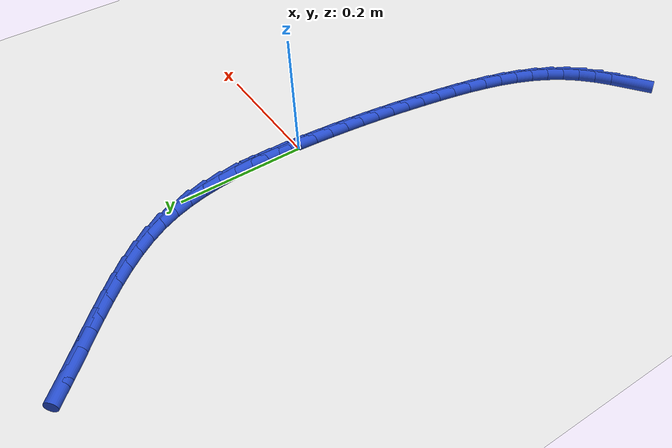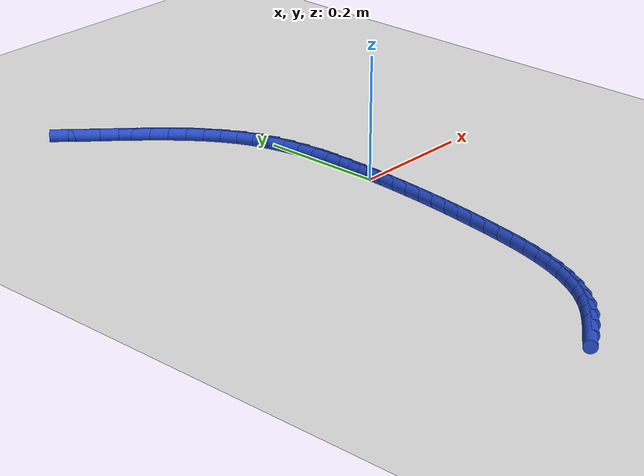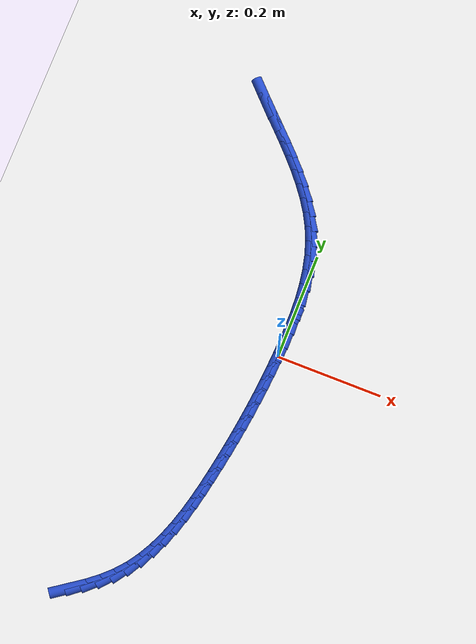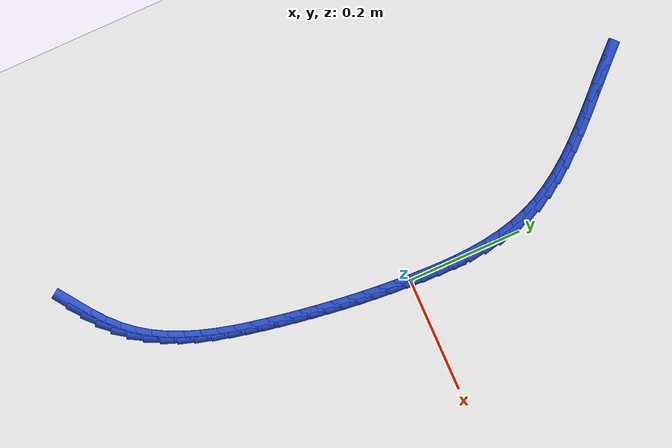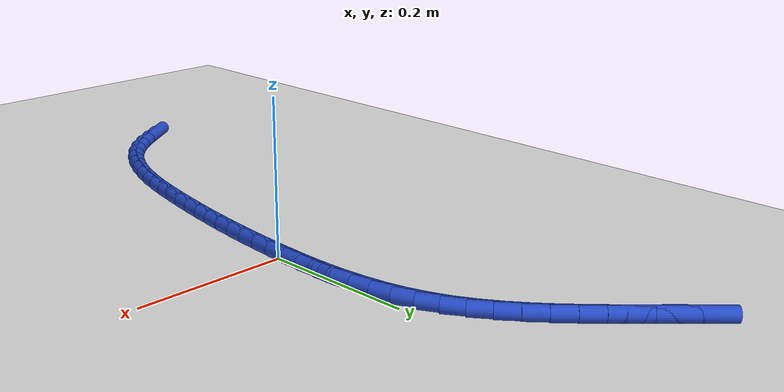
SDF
<sdf version="1.6">
 <world name="default">
  <model name="ground_plane">
   <static>1</static>
   <link name="link">
    <collision name="collision">
     <geometry><plane><normal>0 0 1</normal><size>100 100</size></plane></geometry>
     <surface><friction><ode><mu>100</mu><mu2>50</mu2></ode></friction></surface>
    </collision>
    <visual name="visual">
     <cast_shadows>0</cast_shadows>
     <geometry><plane><normal>0 0 1</normal><size>100 100</size></plane></geometry>
     <material>
      <script><uri>file://media/materials/scripts/gazebo.material</uri><name>Gazebo/WhiteGlow</name></script>
     </material>
    </visual>
   </link>
  </model>
  <model name="line">
   <link name="link_0">
    <pose>1.0299920638612292e-18 1.3877787807814457e-17 0.01 0 1.57 1.524596654501401</pose>
    <collision name="collision">
     <geometry><cylinder><radius>0.01</radius><length>0.08</length></cylinder></geometry>
    </collision>
    <visual name="visual">
     <material>
      <script><name>Gazebo/Blue</name><uri>file://media/materials/scripts/gazebo.material</uri></script>
     </material>
     <geometry><cylinder><radius>0.01</radius><length>0.08</length></cylinder></geometry>
    </visual>
   </link>
   <link name="link_1">
    <pose>0.0012995794318501834 0.02810960823162582 0.01 0 1.57 1.5480155194514944</pose>
    <collision name="collision">
     <geometry><cylinder><radius>0.01</radius><length>0.08</length></cylinder></geometry>
    </collision>
    <visual name="visual">
     <material>
      <script><name>Gazebo/Blue</name><uri>file://media/materials/scripts/gazebo.material</uri></script>
     </material>
     <geometry><cylinder><radius>0.01</radius><length>0.08</length></cylinder></geometry>
    </visual>
   </link>
   <link name="link_2">
    <pose>0.0019438009977629273 0.056383852839954396 0.01 0 1.57 -1.5617484835890312</pose>
    <collision name="collision">
     <geometry><cylinder><radius>0.01</radius><length>0.08</length></cylinder></geometry>
    </collision>
    <visual name="visual">
     <material>
      <script><name>Gazebo/Blue</name><uri>file://media/materials/scripts/gazebo.material</uri></script>
     </material>
     <geometry><cylinder><radius>0.01</radius><length>0.08</length></cylinder></geometry>
    </visual>
   </link>
   <link name="link_3">
    <pose>0.0016878100425737725 0.08467611696201711 0.01 0 1.57 -1.5210902962276536</pose>
    <collision name="collision">
     <geometry><cylinder><radius>0.01</radius><length>0.08</length></cylinder></geometry>
    </collision>
    <visual name="visual">
     <material>
      <script><name>Gazebo/Blue</name><uri>file://media/materials/scripts/gazebo.material</uri></script>
     </material>
     <geometry><cylinder><radius>0.01</radius><length>0.08</length></cylinder></geometry>
    </visual>
   </link>
   <link name="link_4">
    <pose>0.000286751911118262 0.11283978373484543 0.01 0 1.57 -1.4710518882741541</pose>
    <collision name="collision">
     <geometry><cylinder><radius>0.01</radius><length>0.08</length></cylinder></geometry>
    </collision>
    <visual name="visual">
     <material>
      <script><name>Gazebo/Blue</name><uri>file://media/materials/scripts/gazebo.material</uri></script>
     </material>
     <geometry><cylinder><radius>0.01</radius><length>0.08</length></cylinder></geometry>
    </visual>
   </link>
   <link name="link_5">
    <pose>-0.0025042280517680662 0.14072823629547068 0.01 0 1.57 -1.411037345589149</pose>
    <collision name="collision">
     <geometry><cylinder><radius>0.01</radius><length>0.08</length></cylinder></geometry>
    </collision>
    <visual name="visual">
     <material>
      <script><name>Gazebo/Blue</name><uri>file://media/materials/scripts/gazebo.material</uri></script>
     </material>
     <geometry><cylinder><radius>0.01</radius><length>0.08</length></cylinder></geometry>
    </visual>
   </link>
   <link name="link_6">
    <pose>-0.006929984501249669 0.1681948577809243 0.01 0 1.57 -1.3405369817601482</pose>
    <collision name="collision">
     <geometry><cylinder><radius>0.01</radius><length>0.08</length></cylinder></geometry>
    </collision>
    <visual name="visual">
     <material>
      <script><name>Gazebo/Blue</name><uri>file://media/materials/scripts/gazebo.material</uri></script>
     </material>
     <geometry><cylinder><radius>0.01</radius><length>0.08</length></cylinder></geometry>
    </visual>
   </link>
   <link name="link_7">
    <pose>-0.013235372092491 0.1950930313282377 0.01 0 1.57 -1.259317850776316</pose>
    <collision name="collision">
     <geometry><cylinder><radius>0.01</radius><length>0.08</length></cylinder></geometry>
    </collision>
    <visual name="visual">
     <material>
      <script><name>Gazebo/Blue</name><uri>file://media/materials/scripts/gazebo.material</uri></script>
     </material>
     <geometry><cylinder><radius>0.01</radius><length>0.08</length></cylinder></geometry>
    </visual>
   </link>
   <link name="link_8">
    <pose>-0.021665245480656528 0.2212761400744422 0.01 0 1.57 -1.1677625449954943</pose>
    <collision name="collision">
     <geometry><cylinder><radius>0.01</radius><length>0.08</length></cylinder></geometry>
    </collision>
    <visual name="visual">
     <material>
      <script><name>Gazebo/Blue</name><uri>file://media/materials/scripts/gazebo.material</uri></script>
     </material>
     <geometry><cylinder><radius>0.01</radius><length>0.08</length></cylinder></geometry>
    </visual>
   </link>
   <link name="link_9">
    <pose>-0.032462093332376284 0.24659862749176453 0.01 0 1.57 -1.0746625207536677</pose>
    <collision name="collision">
     <geometry><cylinder><radius>0.01</radius><length>0.08</length></cylinder></geometry>
    </collision>
    <visual name="visual">
     <material>
      <script><name>Gazebo/Blue</name><uri>file://media/materials/scripts/gazebo.material</uri></script>
     </material>
     <geometry><cylinder><radius>0.01</radius><length>0.08</length></cylinder></geometry>
    </visual>
   </link>
   <link name="link_10">
    <pose>-0.04567198882232284 0.27100296210242103 0.01 0 1.57 -0.994409094864326</pose>
    <collision name="collision">
     <geometry><cylinder><radius>0.01</radius><length>0.08</length></cylinder></geometry>
    </collision>
    <visual name="visual">
     <material>
      <script><name>Gazebo/Blue</name><uri>file://media/materials/scripts/gazebo.material</uri></script>
     </material>
     <geometry><cylinder><radius>0.01</radius><length>0.08</length></cylinder></geometry>
    </visual>
   </link>
   <link name="link_11">
    <pose>-0.06100027106375672 0.29458431490891634 0.01 0 1.57 -0.9282357230222996</pose>
    <collision name="collision">
     <geometry><cylinder><radius>0.01</radius><length>0.08</length></cylinder></geometry>
    </collision>
    <visual name="visual">
     <material>
      <script><name>Gazebo/Blue</name><uri>file://media/materials/scripts/gazebo.material</uri></script>
     </material>
     <geometry><cylinder><radius>0.01</radius><length>0.08</length></cylinder></geometry>
    </visual>
   </link>
   <link name="link_12">
    <pose>-0.07811827432050887 0.3174530964375885 0.01 0 1.57 -0.8754344284416488</pose>
    <collision name="collision">
     <geometry><cylinder><radius>0.01</radius><length>0.08</length></cylinder></geometry>
    </collision>
    <visual name="visual">
     <material>
      <script><name>Gazebo/Blue</name><uri>file://media/materials/scripts/gazebo.material</uri></script>
     </material>
     <geometry><cylinder><radius>0.01</radius><length>0.08</length></cylinder></geometry>
    </visual>
   </link>
   <link name="link_13">
    <pose>-0.09669733285641029 0.33971971721477573 0.01 0 1.57 -0.8350946309687263</pose>
    <collision name="collision">
     <geometry><cylinder><radius>0.01</radius><length>0.08</length></cylinder></geometry>
    </collision>
    <visual name="visual">
     <material>
      <script><name>Gazebo/Blue</name><uri>file://media/materials/scripts/gazebo.material</uri></script>
     </material>
     <geometry><cylinder><radius>0.01</radius><length>0.08</length></cylinder></geometry>
    </visual>
   </link>
   <link name="link_14">
    <pose>-0.11640878093529186 0.36149458776681576 0.01 0 1.57 -0.8063539632807074</pose>
    <collision name="collision">
     <geometry><cylinder><radius>0.01</radius><length>0.08</length></cylinder></geometry>
    </collision>
    <visual name="visual">
     <material>
      <script><name>Gazebo/Blue</name><uri>file://media/materials/scripts/gazebo.material</uri></script>
     </material>
     <geometry><cylinder><radius>0.01</radius><length>0.08</length></cylinder></geometry>
    </visual>
   </link>
   <link name="link_15">
    <pose>-0.13692395282098463 0.38288811862004707 0.01 0 1.57 -0.7885414164947433</pose>
    <collision name="collision">
     <geometry><cylinder><radius>0.01</radius><length>0.08</length></cylinder></geometry>
    </collision>
    <visual name="visual">
     <material>
      <script><name>Gazebo/Blue</name><uri>file://media/materials/scripts/gazebo.material</uri></script>
     </material>
     <geometry><cylinder><radius>0.01</radius><length>0.08</length></cylinder></geometry>
    </visual>
   </link>
   <link name="link_16">
    <pose>-0.15791418277731945 0.4040107203008073 0.01 0 1.57 -0.7812522340916915</pose>
    <collision name="collision">
     <geometry><cylinder><radius>0.01</radius><length>0.08</length></cylinder></geometry>
    </collision>
    <visual name="visual">
     <material>
      <script><name>Gazebo/Blue</name><uri>file://media/materials/scripts/gazebo.material</uri></script>
     </material>
     <geometry><cylinder><radius>0.01</radius><length>0.08</length></cylinder></geometry>
    </visual>
   </link>
   <link name="link_17">
    <pose>-0.17905080506812737 0.4249728033354349 0.01 0 1.57 -0.7843860382343165</pose>
    <collision name="collision">
     <geometry><cylinder><radius>0.01</radius><length>0.08</length></cylinder></geometry>
    </collision>
    <visual name="visual">
     <material>
      <script><name>Gazebo/Blue</name><uri>file://media/materials/scripts/gazebo.material</uri></script>
     </material>
     <geometry><cylinder><radius>0.01</radius><length>0.08</length></cylinder></geometry>
    </visual>
   </link>
   <link name="link_18">
    <pose>-0.20000515395723936 0.44588477825026784 0.01 0 1.57 -0.7981672097057642</pose>
    <collision name="collision">
     <geometry><cylinder><radius>0.01</radius><length>0.08</length></cylinder></geometry>
    </collision>
    <visual name="visual">
     <material>
      <script><name>Gazebo/Blue</name><uri>file://media/materials/scripts/gazebo.material</uri></script>
     </material>
     <geometry><cylinder><radius>0.01</radius><length>0.08</length></cylinder></geometry>
    </visual>
   </link>
   <link name="link_239">
    <pose>-0.18935843358665794 -0.5290403167448178 0.01 0 1.57 0.6155123413137054</pose>
    <collision name="collision">
     <geometry><cylinder><radius>0.01</radius><length>0.08</length></cylinder></geometry>
    </collision>
    <visual name="visual">
     <material>
      <script><name>Gazebo/Blue</name><uri>file://media/materials/scripts/gazebo.material</uri></script>
     </material>
     <geometry><cylinder><radius>0.01</radius><length>0.08</length></cylinder></geometry>
    </visual>
   </link>
   <link name="link_240">
    <pose>-0.166379016194091 -0.5127902900341645 0.01 0 1.57 0.6796086793850051</pose>
    <collision name="collision">
     <geometry><cylinder><radius>0.01</radius><length>0.08</length></cylinder></geometry>
    </collision>
    <visual name="visual">
     <material>
      <script><name>Gazebo/Blue</name><uri>file://media/materials/scripts/gazebo.material</uri></script>
     </material>
     <geometry><cylinder><radius>0.01</radius><length>0.08</length></cylinder></geometry>
    </visual>
   </link>
   <link name="link_241">
    <pose>-0.14482487498152705 -0.4953742343805272 0.01 0 1.57 0.7625661701061404</pose>
    <collision name="collision">
     <geometry><cylinder><radius>0.01</radius><length>0.08</length></cylinder></geometry>
    </collision>
    <visual name="visual">
     <material>
      <script><name>Gazebo/Blue</name><uri>file://media/materials/scripts/gazebo.material</uri></script>
     </material>
     <geometry><cylinder><radius>0.01</radius><length>0.08</length></cylinder></geometry>
    </visual>
   </link>
   <link name="link_242">
    <pose>-0.12507404562685995 -0.47650532391964906 0.01 0 1.57 0.8644721790427347</pose>
    <collision name="collision">
     <geometry><cylinder><radius>0.01</radius><length>0.08</length></cylinder></geometry>
    </collision>
    <visual name="visual">
     <material>
      <script><name>Gazebo/Blue</name><uri>file://media/materials/scripts/gazebo.material</uri></script>
     </material>
     <geometry><cylinder><radius>0.01</radius><length>0.08</length></cylinder></geometry>
    </visual>
   </link>
   <link name="link_243">
    <pose>-0.10749722826704881 -0.45590323949006945 0.01 0 1.57 0.9715578676004064</pose>
    <collision name="collision">
     <geometry><cylinder><radius>0.01</radius><length>0.08</length></cylinder></geometry>
    </collision>
    <visual name="visual">
     <material>
      <script><name>Gazebo/Blue</name><uri>file://media/materials/scripts/gazebo.material</uri></script>
     </material>
     <geometry><cylinder><radius>0.01</radius><length>0.08</length></cylinder></geometry>
    </visual>
   </link>
   <link name="link_244">
    <pose>-0.09220683334519561 -0.4335167676347329 0.01 0 1.57 1.06645778488665</pose>
    <collision name="collision">
     <geometry><cylinder><radius>0.01</radius><length>0.08</length></cylinder></geometry>
    </collision>
    <visual name="visual">
     <material>
      <script><name>Gazebo/Blue</name><uri>file://media/materials/scripts/gazebo.material</uri></script>
     </material>
     <geometry><cylinder><radius>0.01</radius><length>0.08</length></cylinder></geometry>
    </visual>
   </link>
   <link name="link_245">
    <pose>-0.07899451522598698 -0.40957920894819067 0.01 0 1.57 1.147755163198141</pose>
    <collision name="collision">
     <geometry><cylinder><radius>0.01</radius><length>0.08</length></cylinder></geometry>
    </collision>
    <visual name="visual">
     <material>
      <script><name>Gazebo/Blue</name><uri>file://media/materials/scripts/gazebo.material</uri></script>
     </material>
     <geometry><cylinder><radius>0.01</radius><length>0.08</length></cylinder></geometry>
    </visual>
   </link>
   <link name="link_246">
    <pose>-0.06763191543215943 -0.3843416156285691 0.01 0 1.57 1.2159076592392841</pose>
    <collision name="collision">
     <geometry><cylinder><radius>0.01</radius><length>0.08</length></cylinder></geometry>
    </collision>
    <visual name="visual">
     <material>
      <script><name>Gazebo/Blue</name><uri>file://media/materials/scripts/gazebo.material</uri></script>
     </material>
     <geometry><cylinder><radius>0.01</radius><length>0.08</length></cylinder></geometry>
    </visual>
   </link>
   <link name="link_247">
    <pose>-0.05789067548644836 -0.3580550398739927 0.01 0 1.57 1.2718069110434664</pose>
    <collision name="collision">
     <geometry><cylinder><radius>0.01</radius><length>0.08</length></cylinder></geometry>
    </collision>
    <visual name="visual">
     <material>
      <script><name>Gazebo/Blue</name><uri>file://media/materials/scripts/gazebo.material</uri></script>
     </material>
     <geometry><cylinder><radius>0.01</radius><length>0.08</length></cylinder></geometry>
    </visual>
   </link>
   <link name="link_248">
    <pose>-0.049542436911589514 -0.3309705338825861 0.01 0 1.57 1.3164473931029474</pose>
    <collision name="collision">
     <geometry><cylinder><radius>0.01</radius><length>0.08</length></cylinder></geometry>
    </collision>
    <visual name="visual">
     <material>
      <script><name>Gazebo/Blue</name><uri>file://media/materials/scripts/gazebo.material</uri></script>
     </material>
     <geometry><cylinder><radius>0.01</radius><length>0.08</length></cylinder></geometry>
    </visual>
   </link>
   <link name="link_249">
    <pose>-0.042358841230318675 -0.3033391498524747 0.01 0 1.57 1.3507197775034863</pose>
    <collision name="collision">
     <geometry><cylinder><radius>0.01</radius><length>0.08</length></cylinder></geometry>
    </collision>
    <visual name="visual">
     <material>
      <script><name>Gazebo/Blue</name><uri>file://media/materials/scripts/gazebo.material</uri></script>
     </material>
     <geometry><cylinder><radius>0.01</radius><length>0.08</length></cylinder></geometry>
    </visual>
   </link>
   <link name="link_250">
    <pose>-0.0361115299653716 -0.27541193998178326 0.01 0 1.57 1.3752924992307123</pose>
    <collision name="collision">
     <geometry><cylinder><radius>0.01</radius><length>0.08</length></cylinder></geometry>
    </collision>
    <visual name="visual">
     <material>
      <script><name>Gazebo/Blue</name><uri>file://media/materials/scripts/gazebo.material</uri></script>
     </material>
     <geometry><cylinder><radius>0.01</radius><length>0.08</length></cylinder></geometry>
    </visual>
   </link>
   <link name="link_251">
    <pose>-0.030572144639484065 -0.2474399564686368 0.01 0 1.57 1.3911327902284687</pose>
    <collision name="collision">
     <geometry><cylinder><radius>0.01</radius><length>0.08</length></cylinder></geometry>
    </collision>
    <visual name="visual">
     <material>
      <script><name>Gazebo/Blue</name><uri>file://media/materials/scripts/gazebo.material</uri></script>
     </material>
     <geometry><cylinder><radius>0.01</radius><length>0.08</length></cylinder></geometry>
    </visual>
   </link>
   <link name="link_252">
    <pose>-0.025525849367874345 -0.21965534456407754 0.01 0 1.57 1.4042313767078585</pose>
    <collision name="collision">
     <geometry><cylinder><radius>0.01</radius><length>0.08</length></cylinder></geometry>
    </collision>
    <visual name="visual">
     <material>
      <script><name>Gazebo/Blue</name><uri>file://media/materials/scripts/gazebo.material</uri></script>
     </material>
     <geometry><cylinder><radius>0.01</radius><length>0.08</length></cylinder></geometry>
    </visual>
   </link>
   <link name="link_253">
    <pose>-0.02089330681772412 -0.19210079886795525 0.01 0 1.57 1.4179322959381395</pose>
    <collision name="collision">
     <geometry><cylinder><radius>0.01</radius><length>0.08</length></cylinder></geometry>
    </collision>
    <visual name="visual">
     <material>
      <script><name>Gazebo/Blue</name><uri>file://media/materials/scripts/gazebo.material</uri></script>
     </material>
     <geometry><cylinder><radius>0.01</radius><length>0.08</length></cylinder></geometry>
    </visual>
   </link>
   <link name="link_254">
    <pose>-0.01667328753493108 -0.16470980551794656 0.01 0 1.57 1.4321874156709218</pose>
    <collision name="collision">
     <geometry><cylinder><radius>0.01</radius><length>0.08</length></cylinder></geometry>
    </collision>
    <visual name="visual">
     <material>
      <script><name>Gazebo/Blue</name><uri>file://media/materials/scripts/gazebo.material</uri></script>
     </material>
     <geometry><cylinder><radius>0.01</radius><length>0.08</length></cylinder></geometry>
    </visual>
   </link>
   <link name="link_255">
    <pose>-0.012865502939983193 -0.1374145351446536 0.01 0 1.57 1.4468957477269628</pose>
    <collision name="collision">
     <geometry><cylinder><radius>0.01</radius><length>0.08</length></cylinder></geometry>
    </collision>
    <visual name="visual">
     <material>
      <script><name>Gazebo/Blue</name><uri>file://media/materials/scripts/gazebo.material</uri></script>
     </material>
     <geometry><cylinder><radius>0.01</radius><length>0.08</length></cylinder></geometry>
    </visual>
   </link>
   <link name="link_256">
    <pose>-0.009469664453368424 -0.11014715837867849 0.01 0 1.57 1.4619468782015852</pose>
    <collision name="collision">
     <geometry><cylinder><radius>0.01</radius><length>0.08</length></cylinder></geometry>
    </collision>
    <visual name="visual">
     <material>
      <script><name>Gazebo/Blue</name><uri>file://media/materials/scripts/gazebo.material</uri></script>
     </material>
     <geometry><cylinder><radius>0.01</radius><length>0.08</length></cylinder></geometry>
    </visual>
   </link>
   <link name="link_257">
    <pose>-0.006485483495574747 -0.08283984585062343 0.01 0 1.57 1.4772237815634952</pose>
    <collision name="collision">
     <geometry><cylinder><radius>0.01</radius><length>0.08</length></cylinder></geometry>
    </collision>
    <visual name="visual">
     <material>
      <script><name>Gazebo/Blue</name><uri>file://media/materials/scripts/gazebo.material</uri></script>
     </material>
     <geometry><cylinder><radius>0.01</radius><length>0.08</length></cylinder></geometry>
    </visual>
   </link>
   <link name="link_258">
    <pose>-0.003912671487090138 -0.05542476819109055 0.01 0 1.57 1.4926059726801897</pose>
    <collision name="collision">
     <geometry><cylinder><radius>0.01</radius><length>0.08</length></cylinder></geometry>
    </collision>
    <visual name="visual">
     <material>
      <script><name>Gazebo/Blue</name><uri>file://media/materials/scripts/gazebo.material</uri></script>
     </material>
     <geometry><cylinder><radius>0.01</radius><length>0.08</length></cylinder></geometry>
    </visual>
   </link>
   <link name="link_259">
    <pose>-0.0017509398484025613 -0.02783409603068201 0.01 0 1.57 1.50797281324287</pose>
    <collision name="collision">
     <geometry><cylinder><radius>0.01</radius><length>0.08</length></cylinder></geometry>
    </collision>
    <visual name="visual">
     <material>
      <script><name>Gazebo/Blue</name><uri>file://media/materials/scripts/gazebo.material</uri></script>
     </material>
     <geometry><cylinder><radius>0.01</radius><length>0.08</length></cylinder></geometry>
    </visual>
   </link>
   <link name="link_260">
    <pose>6.938893903907228e-18 4.85722573273506e-17 0.01 0 1.57 1.5232067748911693</pose>
    <collision name="collision">
     <geometry><cylinder><radius>0.01</radius><length>0.08</length></cylinder></geometry>
    </collision>
    <visual name="visual">
     <material>
      <script><name>Gazebo/Blue</name><uri>file://media/materials/scripts/gazebo.material</uri></script>
     </material>
     <geometry><cylinder><radius>0.01</radius><length>0.08</length></cylinder></geometry>
    </visual>
   </link>
   <link name="link_261">
    <pose>0.0013404366376295997 0.02814534927035349 0.01 0 1.57 1.5381964679946276</pose>
    <collision name="collision">
     <geometry><cylinder><radius>0.01</radius><length>0.08</length></cylinder></geometry>
    </collision>
    <visual name="visual">
     <material>
      <script><name>Gazebo/Blue</name><uri>file://media/materials/scripts/gazebo.material</uri></script>
     </material>
     <geometry><cylinder><radius>0.01</radius><length>0.08</length></cylinder></geometry>
    </visual>
   </link>
   <link name="link_262">
    <pose>0.0022706586439982437 0.056669781149776124 0.01 0 1.57 1.5307495044247892</pose>
    <collision name="collision">
     <geometry><cylinder><radius>0.01</radius><length>0.08</length></cylinder></geometry>
    </collision>
    <visual name="visual">
     <material>
      <script><name>Gazebo/Blue</name><uri>file://media/materials/scripts/gazebo.material</uri></script>
     </material>
     <geometry><cylinder><radius>0.01</radius><length>0.08</length></cylinder></geometry>
    </visual>
   </link>
  </model>
 </world>
</sdf>
